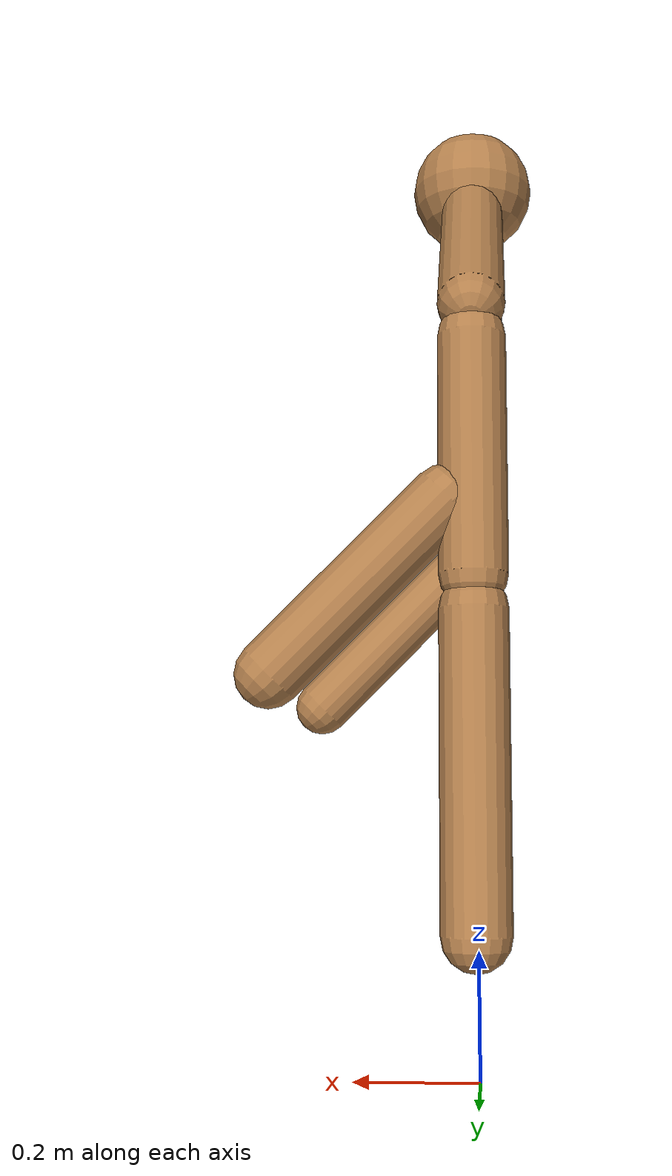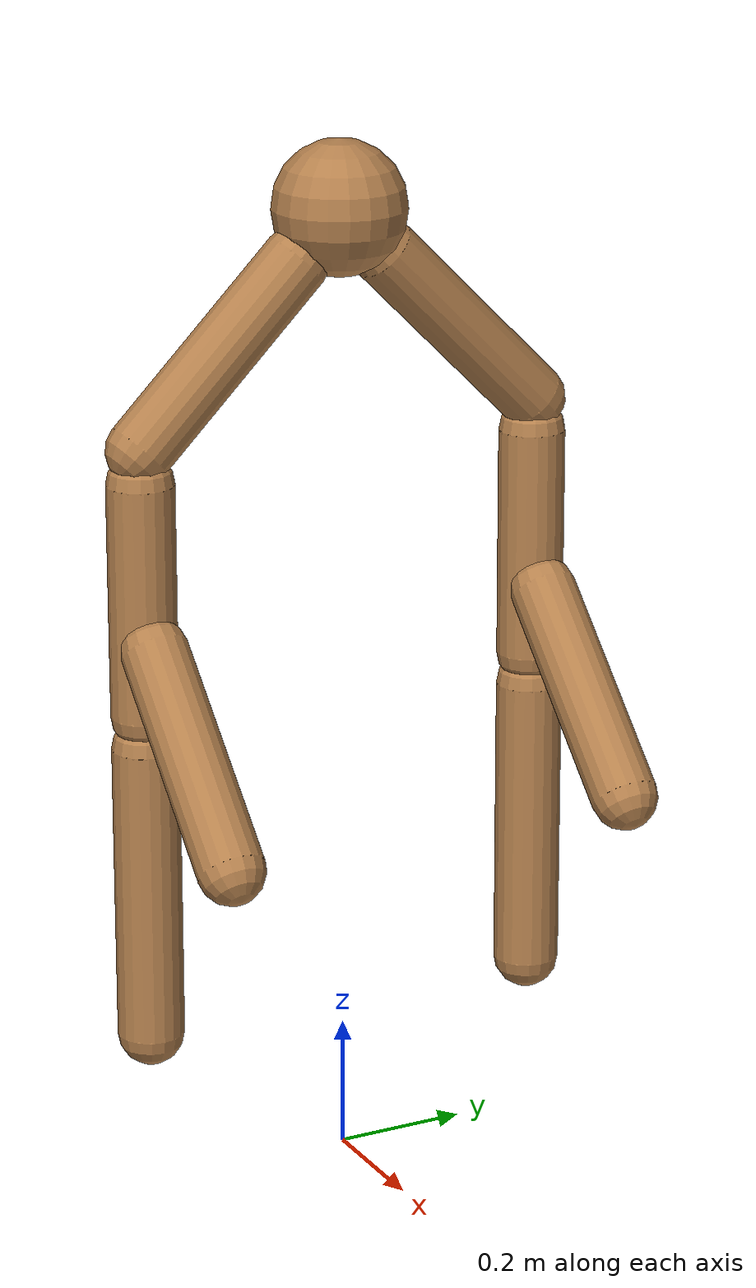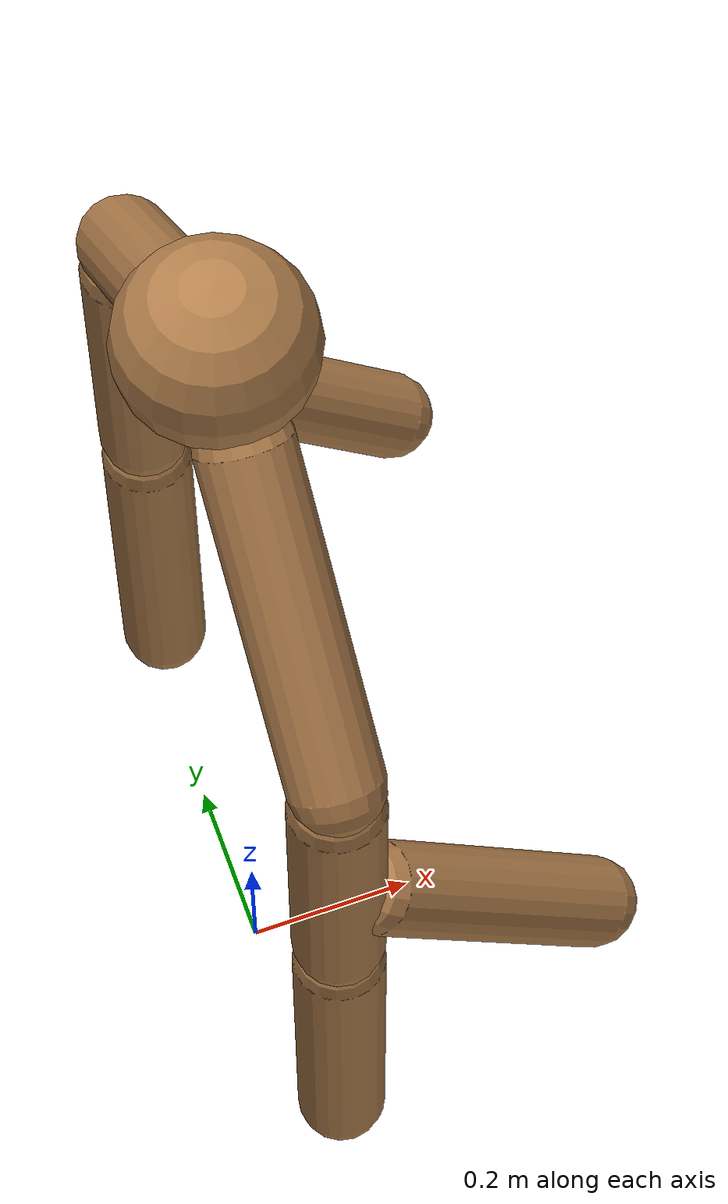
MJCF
<?xml version='1.0' encoding='UTF-8'?>
<!-- Universal Animal Template: unimal -->
<mujoco model="unimal">
  <compiler angle="degree"/>
  <size njmax="2000" nconmax="500"/>
  <option timestep=".005">
    <flag filterparent="disable"/>
  </option>
  <!-- Common defaults to make search space tractable -->
  <default>
    <!-- Define motor defaults -->
    <motor ctrlrange="-1 1" ctrllimited="true"/>
    <!-- Define joint defaults -->
    <default class="normal_joint">
      <joint type="hinge" damping="1" stiffness="1" armature="1" limited="true" range="-120 120" solimplimit="0 0.99 0.01"/>
    </default>
    <default class="walker_joint">
      <joint type="hinge" damping="0.2" stiffness="1" armature=".01" limited="true" range="-120 120" solimplimit="0 0.99 0.01"/>
    </default>
    <default class="stiff_joint">
      <joint type="hinge" damping="5" stiffness="10" armature=".01" limited="true" solimplimit="0 0.99 0.01"/>
    </default>
    <default class="free">
      <joint limited="false" damping="0" armature="0" stiffness="0"/>
    </default>
    <default class="growth_site">
      <site size="1e-6 1e-6 1e-6"/>
    </default>
    <default class="torso_growth_site">
      <site size="1e-6 1e-6 1e-6"/>
    </default>
    <default class="mirror_growth_site">
      <site size="1e-6 1e-6 1e-6"/>
    </default>
    <default class="btm_pos_site">
      <site size="1e-6 1e-6 1e-6"/>
    </default>
    <default class="box_face_site">
      <site size="1e-6 1e-6 1e-6"/>
    </default>
    <default class="imu_vel">
      <site type="box" size="0.05" rgba="1 0 0 0"/>
    </default>
    <default class="touch_site">
      <site group="3" rgba="0 0 1 .3"/>
    </default>
    <default class="food_site">
      <site material="food" size="0.15"/>
    </default>
    <!-- Define geom defaults -->
    <geom type="capsule" condim="3" friction="0.7 0.1 0.1" material="self"/>
  </default>
  <worldbody>
    <light diffuse="1 1 1" directional="true" exponent="1" pos="0 0 8" specular="0.1 0.1 0.1" dir="0 0 -1"/>
    <!-- Programatically generated xml goes here -->
    <body name="torso/0" pos="0 0 1.47">
      <joint name="root" type="free" class="free"/>
      <site name="root" class="imu_vel"/>
      <geom name="torso/0" type="sphere" size="0.1" condim="3" density="500"/>
      <camera name="side" pos="0 -7 2" xyaxes="1 0 0 0 1 2" mode="trackcom"/>
      <site name="torso/0" class="growth_site" pos="0 0 0"/>
      <site name="torso/btm_pos/0" class="btm_pos_site" pos="0 0 -0.1"/>
      <site name="torso/touch/0" class="touch_site" size="0.11"/>
      <site name="torso/vertical/0" class="torso_growth_site" pos="0 0 -0.1"/>
      <body name="limb/0" pos="0.0 0.07 -0.07">
        <joint name="limbx/0" type="hinge" class="normal_joint" range="0 60" pos="0.0 -0.04 0.04" axis="1.0 0.0 0.0"/>
        <geom name="limb/0" type="capsule" fromto="0.0 0.0 0.0 0.0 0.25 -0.25" size="0.05" density="900"/>
        <site name="limb/mid/0" class="mirror_growth_site" pos="0.0 0.14 -0.14"/>
        <site name="limb/btm/0" class="mirror_growth_site" pos="0.0 0.25 -0.25"/>
        <site name="limb/btm_pos/0" class="btm_pos_site" pos="0.0 0.25 -0.25"/>
        <site name="limb/touch/0" class="touch_site" size="0.060000000000000005" fromto="0.0 0.0 0.0 0.0 0.25 -0.25" type="capsule"/>
        <body name="limb/16" pos="0.0 0.25 -0.3">
          <joint name="limbx/16" type="hinge" class="normal_joint" range="-90 0" pos="0.0 0.0 0.05" axis="1.0 0.0 0.0"/>
          <joint name="limby/16" type="hinge" class="normal_joint" range="0 60" pos="0.0 0.0 0.05" axis="0.0 1.0 0.0"/>
          <geom name="limb/16" type="capsule" fromto="0.0 0.0 0.0 0.0 0.0 -0.35" size="0.05" density="900"/>
          <site name="limb/mid/16" class="mirror_growth_site" pos="0.0 0.0 -0.2"/>
          <site name="limb/btm/16" class="mirror_growth_site" pos="0.0 0.0 -0.35"/>
          <site name="limb/btm_pos/16" class="btm_pos_site" pos="0.0 0.0 -0.35"/>
          <site name="limb/touch/16" class="touch_site" size="0.060000000000000005" fromto="0.0 0.0 0.0 0.0 0.0 -0.35" type="capsule"/>
          <body name="limb/22" pos="0.0 0.0 -0.39999999999999997">
            <joint name="limby/22" type="hinge" class="normal_joint" range="-30 60" pos="0.0 0.0 0.05" axis="0.0 1.0 0.0"/>
            <geom name="limb/22" type="capsule" fromto="0.0 0.0 0.0 0.0 0.0 -0.45" size="0.05" density="900"/>
            <site name="limb/mid/22" class="mirror_growth_site" pos="0.0 0.0 -0.25"/>
            <site name="limb/btm/22" class="mirror_growth_site" pos="0.0 0.0 -0.45"/>
            <site name="limb/btm_pos/22" class="btm_pos_site" pos="0.0 0.0 -0.5"/>
            <site name="limb/touch/22" class="touch_site" size="0.060000000000000005" fromto="0.0 0.0 0.0 0.0 0.0 -0.45" type="capsule"/>
          </body>
          <body name="limb/24" pos="0.04 0.0 -0.24000000000000002">
            <joint name="limbx/24" type="hinge" class="normal_joint" range="-30 60" pos="-0.04 0.0 0.04" axis="0.7071 0.0 0.7071"/>
            <geom name="limb/24" type="capsule" fromto="0.0 0.0 0.0 0.25 0.0 -0.25" size="0.05" density="900"/>
            <site name="limb/mid/24" class="mirror_growth_site" pos="0.14 0.0 -0.14"/>
            <site name="limb/btm/24" class="mirror_growth_site" pos="0.25 0.0 -0.25"/>
            <site name="limb/btm_pos/24" class="btm_pos_site" pos="0.28 0.0 -0.28"/>
            <site name="limb/touch/24" class="touch_site" size="0.060000000000000005" fromto="0.0 0.0 0.0 0.25 0.0 -0.25" type="capsule"/>
          </body>
        </body>
      </body>
      <body name="limb/1" pos="0.0 -0.07 -0.07">
        <joint name="limbx/1" type="hinge" class="normal_joint" range="0 60" pos="0.0 0.04 0.04" axis="1.0 0.0 -0.0"/>
        <geom name="limb/1" type="capsule" fromto="0.0 0.0 0.0 0.0 -0.25 -0.25" size="0.05" density="900"/>
        <site name="limb/mid/1" class="mirror_growth_site" pos="0.0 -0.14 -0.14"/>
        <site name="limb/btm/1" class="mirror_growth_site" pos="0.0 -0.25 -0.25"/>
        <site name="limb/btm_pos/1" class="btm_pos_site" pos="0.0 -0.25 -0.25"/>
        <site name="limb/touch/1" class="touch_site" size="0.060000000000000005" fromto="0.0 0.0 0.0 0.0 -0.25 -0.25" type="capsule"/>
        <body name="limb/17" pos="0.0 -0.25 -0.3">
          <joint name="limbx/17" type="hinge" class="normal_joint" range="-90 0" pos="0.0 0.0 0.05" axis="1.0 0.0 0.0"/>
          <joint name="limby/17" type="hinge" class="normal_joint" range="0 60" pos="0.0 0.0 0.05" axis="0.0 1.0 0.0"/>
          <geom name="limb/17" type="capsule" fromto="0.0 0.0 0.0 0.0 0.0 -0.35" size="0.05" density="900"/>
          <site name="limb/mid/17" class="mirror_growth_site" pos="0.0 0.0 -0.2"/>
          <site name="limb/btm/17" class="mirror_growth_site" pos="0.0 0.0 -0.35"/>
          <site name="limb/btm_pos/17" class="btm_pos_site" pos="0.0 0.0 -0.35"/>
          <site name="limb/touch/17" class="touch_site" size="0.060000000000000005" fromto="0.0 0.0 0.0 0.0 0.0 -0.35" type="capsule"/>
          <body name="limb/23" pos="0.0 0.0 -0.39999999999999997">
            <joint name="limby/23" type="hinge" class="normal_joint" range="-30 60" pos="0.0 0.0 0.05" axis="0.0 1.0 0.0"/>
            <geom name="limb/23" type="capsule" fromto="0.0 0.0 0.0 0.0 0.0 -0.45" size="0.05" density="900"/>
            <site name="limb/mid/23" class="mirror_growth_site" pos="0.0 0.0 -0.25"/>
            <site name="limb/btm/23" class="mirror_growth_site" pos="0.0 0.0 -0.45"/>
            <site name="limb/btm_pos/23" class="btm_pos_site" pos="0.0 0.0 -0.5"/>
            <site name="limb/touch/23" class="touch_site" size="0.060000000000000005" fromto="0.0 0.0 0.0 0.0 0.0 -0.45" type="capsule"/>
          </body>
          <body name="limb/25" pos="0.04 0.0 -0.24000000000000002">
            <joint name="limbx/25" type="hinge" class="normal_joint" range="-30 60" pos="-0.04 0.0 0.04" axis="0.7071 0.0 0.7071"/>
            <geom name="limb/25" type="capsule" fromto="0.0 0.0 0.0 0.25 0.0 -0.25" size="0.05" density="900"/>
            <site name="limb/mid/25" class="mirror_growth_site" pos="0.14 0.0 -0.14"/>
            <site name="limb/btm/25" class="mirror_growth_site" pos="0.25 0.0 -0.25"/>
            <site name="limb/btm_pos/25" class="btm_pos_site" pos="0.28 0.0 -0.28"/>
            <site name="limb/touch/25" class="touch_site" size="0.060000000000000005" fromto="0.0 0.0 0.0 0.25 0.0 -0.25" type="capsule"/>
          </body>
        </body>
      </body>
    </body>
  </worldbody>
  <actuator>
    <motor joint="limbx/0" gear="200" name="limbx/0"/>
    <motor joint="limbx/16" gear="250" name="limbx/16"/>
    <motor joint="limby/16" gear="300" name="limby/16"/>
    <motor joint="limby/22" gear="300" name="limby/22"/>
    <motor joint="limbx/24" gear="250" name="limbx/24"/>
    <motor joint="limbx/1" gear="200" name="limbx/1"/>
    <motor joint="limbx/17" gear="250" name="limbx/17"/>
    <motor joint="limby/17" gear="300" name="limby/17"/>
    <motor joint="limby/23" gear="300" name="limby/23"/>
    <motor joint="limbx/25" gear="250" name="limbx/25"/>
  </actuator>
  <sensor>
    <accelerometer name="torso_accel" site="root"/>
    <gyro name="torso_gyro" site="root"/>
    <velocimeter name="torso_vel" site="root"/>
    <subtreeangmom name="unimal_am" body="torso/0"/>
    <touch name="torso/0" site="torso/touch/0"/>
    <touch name="limb/0" site="limb/touch/0"/>
    <touch name="limb/16" site="limb/touch/16"/>
    <touch name="limb/22" site="limb/touch/22"/>
    <touch name="limb/24" site="limb/touch/24"/>
    <touch name="limb/1" site="limb/touch/1"/>
    <touch name="limb/17" site="limb/touch/17"/>
    <touch name="limb/23" site="limb/touch/23"/>
    <touch name="limb/25" site="limb/touch/25"/>
  </sensor>
  <!-- Add hfield assets -->
  <asset/>
  <!-- List of contacts to exclude -->
  <contact/>
  <!-- Define material, texture etc -->
  <asset>
    <material name="grid" texture="grid" texrepeat="1 1" texuniform="true" reflectance="0.1"/>
    <material name="hfield" texture="hfield" texrepeat="1 1" texuniform="true" reflectance="0.1"/>
    <material name="wall" texture="wall" texrepeat="1 1" texuniform="true" reflectance=".5"/>
    <material name="platform" texture="platform" texrepeat="1 1" texuniform="true" reflectance=".5"/>
    <material name="boundary" texture="boundary" texrepeat="1 1" texuniform="true" reflectance=".5"/>
    <material name="jump" texture="jump" texrepeat="1 1" texuniform="true" reflectance=".5"/>
    <material name="goal" rgba="1 0 0 1"/>
    <material name="food" rgba="0 0 1 1" emission="1"/>
    <material name="init_position" rgba="0 1 0 0.7"/>
    <material name="self" rgba=".7 .5 .3 1"/>
    <material name="self_invisible" rgba=".7 .5 .3 0"/>
    <material name="self_default" rgba=".7 .5 .3 1"/>
    <material name="self_highlight" rgba="0 .5 .3 1"/>
    <material name="effector" rgba=".7 .4 .2 1"/>
    <material name="effector_default" rgba=".7 .4 .2 1"/>
    <material name="effector_highlight" rgba="0 .5 .3 1"/>
    <material name="decoration" rgba=".3 .5 .7 1"/>
    <material name="eye" rgba="0 .2 1 1"/>
    <material name="target" rgba=".6 .3 .3 1"/>
    <material name="target_default" rgba=".6 .3 .3 1"/>
    <material name="target_highlight" rgba=".6 .3 .3 .4"/>
    <material name="site" rgba=".5 .5 .5 .3"/>
    <material name="ball" texture="ball"/>
  </asset>
  <asset>
    <texture name="grid" type="2d" builtin="checker" rgb1="0.4 0.4 0.4" rgb2="0.4 0.4 0.4" width="300" height="300" mark="edge" markrgb="0.2 0.2 0.2"/>
    <texture name="hfield" type="2d" builtin="checker" rgb1="0.4 0.4 0.4" rgb2="0.4 0.4 0.4" width="300" height="300" mark="edge" markrgb="0.2 0.2 0.2"/>
    <texture name="wall" type="2d" builtin="flat" rgb1="0.9 0.7 0" rgb2="0.9 0.7 0" width="300" height="300"/>
    <texture name="platform" type="2d" builtin="flat" rgb1="0.3 0 0.8" rgb2="0.3 0 0.8" width="300" height="300"/>
    <texture name="boundary" type="2d" builtin="flat" rgb1="0.3 0.3 0.3" rgb2="0.3 0.3 0.3" width="300" height="300"/>
    <texture name="jump" type="2d" builtin="flat" rgb1="0.3 0.3 0.3" rgb2="0.3 0.3 0.3" width="300" height="300"/>
    <texture name="skybox" type="skybox" builtin="gradient" rgb1="1 1 1" rgb2="0.6 0.6 0.6" width="800" height="800"/>
    <texture name="ball" builtin="checker" mark="cross" width="151" height="151" rgb1="0.1 0.1 0.1" rgb2="0.9 0.9 0.9" markrgb="1 1 1"/>
  </asset>
  <visual>
    <headlight ambient="0.6 0.6 0.6" diffuse="0.3 0.3 0.3" specular="0 0 0"/>
    <map znear=".01" shadowclip="0.5"/>
    <quality shadowsize="16384"/>
  </visual>
</mujoco>
